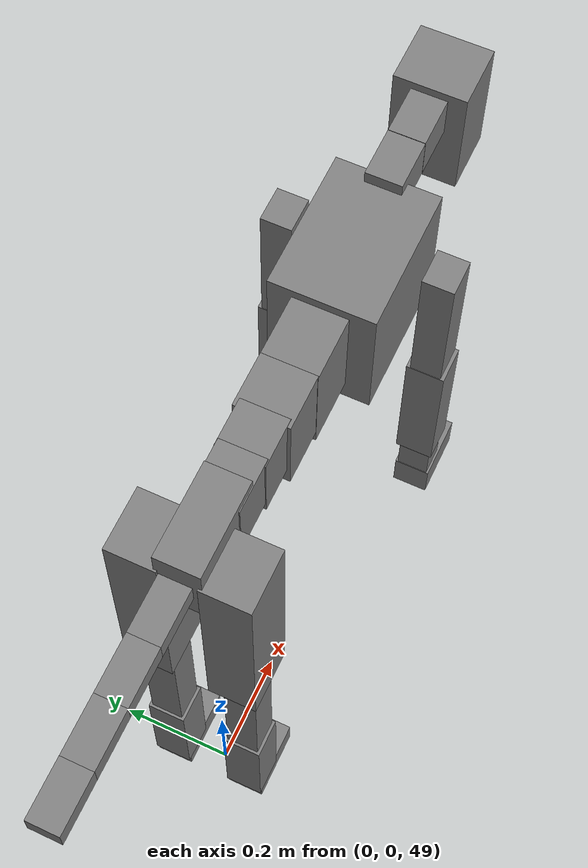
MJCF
<mujoco model="dog">

    <default>
        <joint armature="0.02" stiffness="1" damping="0.2" limited="true"/>
        <geom condim="3" friction="1 0.05 0.05" margin="0.01"/>
        <motor ctrllimited="true" ctrlrange="-1.0 1.0" forcelimited="true" gear="50"/>
    </default>

    <compiler inertiafromgeom="true" angle="radian"/>

    <option timestep="0.016" iterations="50" tolerance="1e-10" solver="Newton" jacobian="dense" cone="pyramidal"/>

    <size nconmax="20000" njmax="60000" nstack="5000000"/>
    <visual>
        <map force="0.1" zfar="30"/>
        <rgba haze="0.15 0.25 0.35 1"/>
        <quality shadowsize="2048"/>
        <global offwidth="800" offheight="800"/>
    </visual>

    <asset>
        <texture type="skybox" builtin="gradient" rgb1="0.3 0.5 0.7" rgb2="0 0 0" width="512" height="512"/>
        <texture name="texplane" type="2d" builtin="checker" rgb1=".2 .3 .4" rgb2=".1 0.15 0.2" width="512" height="512"
                 mark="cross" markrgb=".8 .8 .8"/>
        <texture name="texgeom" type="cube" builtin="flat" mark="cross" width="127" height="1278" rgb1="0.8 0.6 0.4"
                 rgb2="0.8 0.6 0.4" markrgb="1 1 1" random="0.01"/>

        <material name="matplane" reflectance="0.3" texture="texplane" texrepeat="1 1" texuniform="true"/>
        <material name="matgeom" texture="texgeom" texuniform="true" rgba="0.8 0.6 .4 1"/>
    </asset>

    <worldbody>
        <geom name="floor" pos="0 0 0" size="0 0 .25" type="plane" material="matplane" condim="3"/>

        <light directional="false" diffuse=".2 .2 .2" specular="0 0 0" pos="0 0 5" dir="0 0 -1" castshadow="false"/>
        <light mode="targetbodycom" target="torso" directional="false" diffuse=".8 .8 .8" specular="0.3 0.3 0.3"
               pos="0 0 4.0" dir="0 0 -1"/>

        <body name="root" pos="0 0 50">
            <freejoint name="root_1"/>
            <geom type="box" pos="0 0 -0.02" size="0.0774  0.0358  0.063" density="2030"/>

            <body name="spine1" pos="0.054 0 0">
                <joint name="spine1_y" axis="0 1 0" range="0 0.7" limited="true"/>
                <geom type="box" pos="0.02375 0 -0.03" size="0.04375  0.0375  0.05985" density="2030"/>

                <body name="spine2" pos="0.0612 0 0">
                    <joint name="spine2_y" axis="0 1 0" range="-0.15 0.15" limited="true"/>
                    <geom type="box" pos="0.03555  0  -0.04" size="0.04055  0.039  0.06615" density="2030"/>

                    <body name="spine3" pos="0.0730 0 0">
                        <joint name="spine3_y" axis="0 1 0" range="-0.15 0.15" limited="true"/>
                        <geom type="box" pos="0.03555  0  -0.057" size="0.04555  0.0445  0.081" density="2030"/>

                        <body name="spine4" pos="0.0780 0 0">
                            <joint name="spine4_y" axis="0 1 0" range="-0.15 0.15" limited="true"/>
                            <geom type="box" pos="0.05265  0  -0.07" size="0.05265  0.045  0.09135" density="2030"/>

                            <body name="torso" pos="0.1082 0 0">
                                <joint name="torso_y" axis="0 1 0" range="-0.15 0.15" limited="true"/>
                                <geom type="box" pos="0.11925  0  -0.085" size="0.11925  0.085  0.11745"
                                      density="2030"/>

                                <body name="neck1" pos="0.2160  0   0.0180">
                                    <joint name="neck1_y" axis="0 1 0" range="-1.2  -1" limited="true"/>
                                    <geom type="box" pos="0.0423  0  0" size="0.0423  0.03  0.036" density="2325"/>

                                    <body name="neck2" pos="0.0853  0  0">
                                        <joint name="neck2_y" axis="0 1 0" range="0.1  0" limited="true"/>
                                        <geom type="box" pos="0.0423  0  0" size="0.0423  0.03  0.036" density="2325"/>

                                        <body name="head" pos="0.0853  0  0">
                                            <joint name="head_y" axis="0 1 0" range="-0.3  -0.2" limited="true"/>
                                            <geom type="box" pos="0.0531  0  -0.055" size="0.0531  0.06  0.1044"
                                                  density="4030"/>

                                        </body>
                                    </body>
                                </body>

                                <body name="front_shoulder" pos="0.156  0   -0.0480">
                                    <joint name="front_shoulder_y" axis="0 1 0" range="-1 1.5" limited="true"/>
                                    <geom type="box" pos="0 0.13 -0.1117" size="0.0303  0.0259  0.1383" density="1158"/>
                                    <geom type="box" pos="0 -0.13 -0.1117" size="0.0303  0.0259  0.1383"
                                          density="1158"/>

                                    <body name="front_elbow" pos="0  0  -0.2233">
                                        <joint name="front_elbow_y" axis="0 1 0" range="-2 0" limited="true"/>
                                        <geom type="box" pos="0 0.13 -0.1330" size="0.0314  0.0321  0.1330"
                                              density="1081"/>
                                        <geom type="box" pos="0 -0.13 -0.1330" size="0.0314  0.0321  0.1330"
                                              density="1081"/>

                                        <body name="front_wrist" pos="0  0  -0.2660">
                                            <joint name="front_wrist_y" axis="0 1 0" range="-0.2 0" limited="true"/>
                                            <geom type="box" pos="0 0.13 -0.0451" size="0.0242  0.0269  0.0583"
                                                  density="1664"/>
                                            <geom type="box" pos="0 -0.13 -0.0451" size="0.0242  0.0269  0.0583"
                                                  density="1664"/>

                                            <body name="front_finger_end" pos="0  0  -0.0903">
                                                <joint name="front_finger_y" axis="0 1 0" range="-0.4 1"
                                                       limited="true"/>
                                                <geom type="box" pos="0.0306  0.13  -0.0181"
                                                      size="0.0560  0.0306  0.0331" density="1515"/>
                                                <geom type="box" pos="0.0306  -0.13  -0.0181"
                                                      size="0.0560  0.0306  0.0331" density="1515"/>

                                            </body>

                                        </body>
                                    </body>
                                </body>

                            </body>
                        </body>
                    </body>
                </body>
            </body>

            <body name="back_hip" pos="-0.03 0 -0.018">
                <joint name="back_hip_y" axis="0 1 0" range="-1.5 0.3" limited="true"/>
                <geom type="box" pos="0 0.07 -0.1735" size="0.0508  0.0398  0.1963" density="1154"/>
                <geom type="box" pos="0 -0.07 -0.1735" size="0.0508  0.0398  0.1963" density="1154"/>

                <body name="back_knee" pos="0  0  -0.3471">
                    <joint name="back_knee_y" axis="0 1 0" range="0 2.8" limited="true"/>
                    <geom type="box" pos="0 0.07 -0.1617" size="0.0279  0.0275  0.1773" density="1227"/>
                    <geom type="box" pos="0 -0.07 -0.1617" size="0.0279  0.0275  0.1773" density="1227"/>

                    <body name="back_ankle" pos="0  0  -0.3235">
                        <joint name="back_ankle_y" axis="0 1 0" range="-2.2 0" limited="true"/>
                        <geom type="box" pos="0 0.07 -0.1004" size="0.0325  0.0325  0.1116" density="1284"/>
                        <geom type="box" pos="0 -0.07 -0.1004" size="0.0325  0.0325  0.1116" density="1284"/>

                        <body name="back_toe_end" pos="0  0  -0.2007">
                            <joint name="back_toe_y" axis="0 1 0" range="-0.4 1" limited="true"/>
                            <geom type="box" pos="0.0323  0.07  -0.0114" size="0.0592  0.0323  0.0264" density="1515"/>
                            <geom type="box" pos="0.0323  -0.07  -0.0114" size="0.0592  0.0323  0.0264" density="1515"/>

                        </body>
                    </body>
                </body>
            </body>

            <body name="tail1" pos="-0.074 0 -0.006">
                <joint name="tail1_y" axis="0 1 0" range="-0.2 0.2" limited="true"/>
                <geom type="box" pos="-0.0536  0  0" size="0.045  0.025  0.0175" density="1587"/>

                <body name="tail2" pos="-0.09 0 0">
                    <joint name="tail2_y" axis="0 1 0" range="-0.2 0.2" limited="true"/>
                    <geom type="box" pos="-0.0536  0  0" size="0.045  0.025  0.0175" density="1587"/>

                    <body name="tail3" pos="-0.09 0 0">
                        <joint name="tail3_y" axis="0 1 0" range="-0.2 0.2" limited="true"/>
                        <geom type="box" pos="-0.0536  0  0" size="0.045  0.025  0.0175" density="1587"/>

                        <body name="tail4" pos="-0.09 0 0">
                            <joint name="tail4_y" axis="0 1 0" range="-0.2 0.2" limited="true"/>
                            <geom type="box" pos="-0.0536  0  0" size="0.045  0.025  0.0175" density="1587"/>

                        </body>
                    </body>
                </body>
            </body>
        </body>
    </worldbody>

    <actuator>
        <motor joint="spine1_y" forcerange="-150 150     "/>
        <motor joint="spine2_y" forcerange="-150 150     "/>
        <motor joint="spine3_y" forcerange="-150 150     "/>
        <motor joint="spine4_y" forcerange="-150 150     "/>
        <motor joint="torso_y" forcerange="-150 150     "/>
        <motor joint="neck1_y" forcerange="-100 100       "/>
        <motor joint="neck2_y" forcerange="-100 100       "/>
        <motor joint="head_y" forcerange="-150 150       "/>
        <motor joint="front_shoulder_y" forcerange="-143.06 129.53"/>
        <motor joint="front_elbow_y" forcerange="-160.90 172.63"/>
        <motor joint="front_wrist_y" forcerange="-134.66 80.44"/>
        <motor joint="front_finger_y" forcerange="-61.45 61.53"/>
        <motor joint="back_hip_y" forcerange="-353.67 377.58"/>
        <motor joint="back_knee_y" forcerange="-308.29 291.62"/>
        <motor joint="back_angle_y" forcerange="-212.36 207.88"/>
        <motor joint="back_toe_y" forcerange="-61.83 116.53"/>
        <motor joint="tail1_y" forcerange="-50 50     "/>
        <motor joint="tail2_y" forcerange="-50 50     "/>
        <motor joint="tail3_y" forcerange="-50 50     "/>
        <motor joint="tail4_y" forcerange="-50 50     "/>
    </actuator>
</mujoco>
